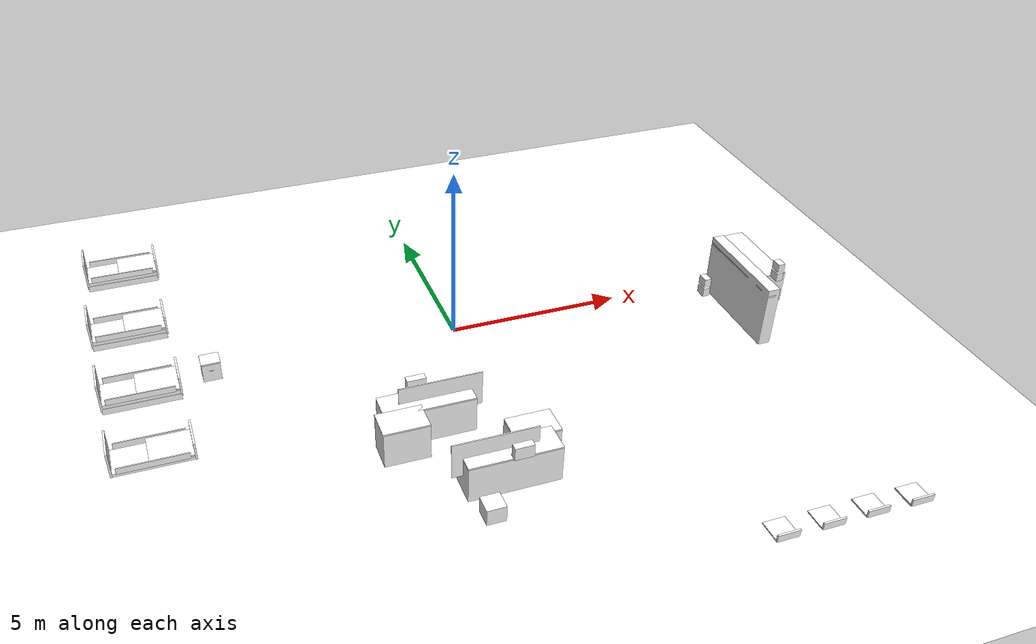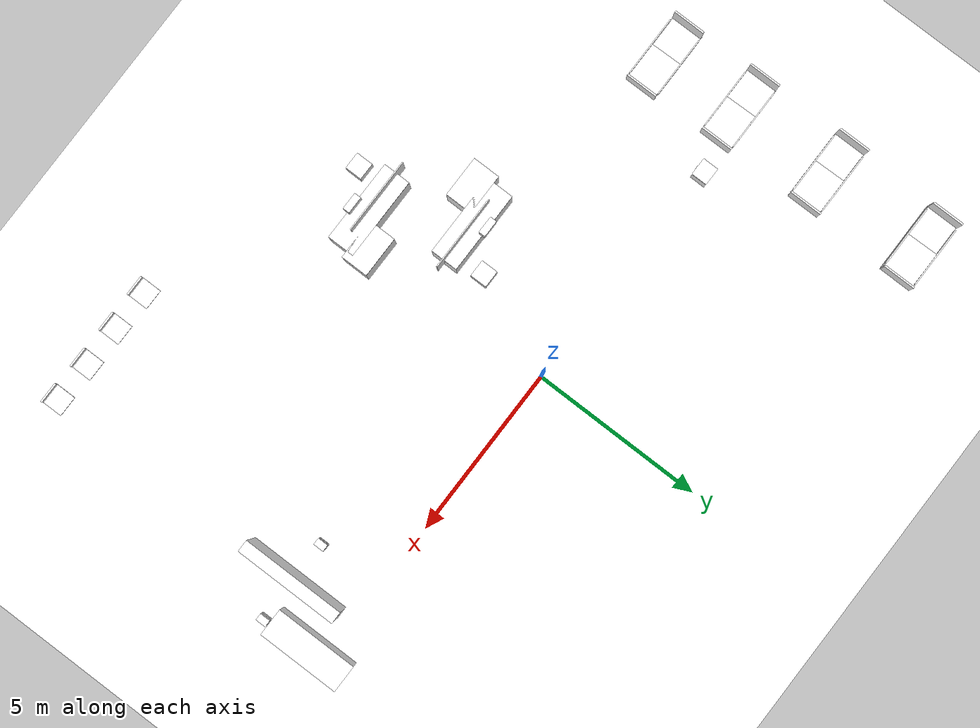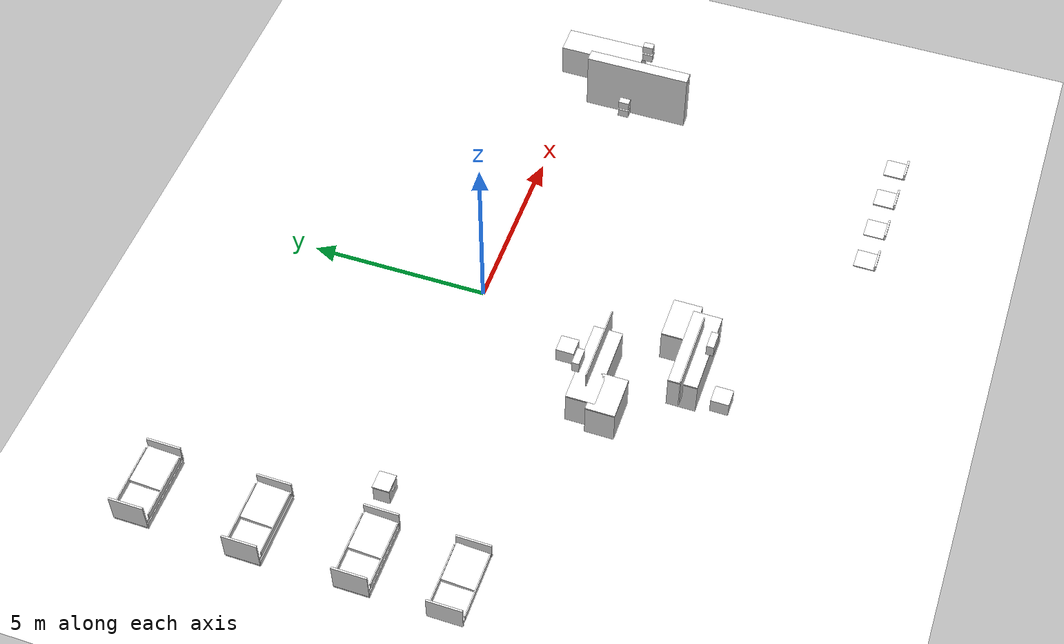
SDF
<sdf version="1.9">
 <world name="hospital">
  <model name="ground_plane">
   <static>true</static>
   <link name="link">
    <collision name="collision">
     <geometry><plane><normal>0 0 1</normal><size>100 100</size></plane></geometry>
     <surface><friction><ode><mu>100</mu><mu2>50</mu2></ode></friction></surface>
    </collision>
    <visual name="visual">
     <cast_shadows>false</cast_shadows>
     <geometry><plane><normal>0 0 1</normal><size>100 100</size></plane></geometry>
     <material><ambient>1 1 1 1</ambient><diffuse>1 1 1 1</diffuse></material>
    </visual>
    <inertial>
     <mass>1</mass>
     <inertia><ixx>1</ixx><ixy>0</ixy><ixz>0</ixz><iyy>1</iyy><iyz>0</iyz><izz>1</izz></inertia>
    </inertial>
   </link>
  </model>
  <model name="bed_1">
   <static>true</static>
   <link name="frame">
    <pose>-8.2 6.5 0.09 0 -0 0</pose>
    <visual name="frame_v">
     <geometry><box><size>2.05 0.95 0.18</size></box></geometry>
     <material><ambient>1 1 1 1</ambient><diffuse>1 1 1 1</diffuse><specular>0.15 0.15 0.18 1</specular></material>
    </visual>
    <collision name="frame_c"><geometry><box><size>2.05 0.95 0.18</size></box></geometry></collision>
    <inertial>
     <mass>1</mass>
     <inertia><ixx>1</ixx><ixy>0</ixy><ixz>0</ixz><iyy>1</iyy><iyz>0</iyz><izz>1</izz></inertia>
    </inertial>
   </link>
   <link name="mattress1">
    <pose>-8.2 6.5 0.24 0 -0 0</pose>
    <visual name="mattress1_v">
     <geometry><box><size>2 0.92 0.1</size></box></geometry>
     <material><ambient>1 1 1 1</ambient><diffuse>1 1 1 1</diffuse><specular>0.15 0.15 0.18 1</specular></material>
    </visual>
    <collision name="mattress1_c"><geometry><box><size>2 0.92 0.1</size></box></geometry></collision>
    <inertial>
     <mass>1</mass>
     <inertia><ixx>1</ixx><ixy>0</ixy><ixz>0</ixz><iyy>1</iyy><iyz>0</iyz><izz>1</izz></inertia>
    </inertial>
   </link>
   <link name="mattress2">
    <pose>-7.75 6.5 0.34 0.08 -0 0</pose>
    <visual name="mattress2_v">
     <geometry><box><size>1.1 0.92 0.1</size></box></geometry>
     <material><ambient>1 1 1 1</ambient><diffuse>1 1 1 1</diffuse><specular>0.15 0.15 0.18 1</specular></material>
    </visual>
    <collision name="mattress2_c"><geometry><box><size>1.1 0.92 0.1</size></box></geometry></collision>
    <inertial>
     <mass>1</mass>
     <inertia><ixx>1</ixx><ixy>0</ixy><ixz>0</ixz><iyy>1</iyy><iyz>0</iyz><izz>1</izz></inertia>
    </inertial>
   </link>
   <link name="head">
    <pose>-9.225 6.5 0.52 0 -0 0</pose>
    <visual name="head_v">
     <geometry><box><size>0.05 0.95 0.85</size></box></geometry>
     <material><ambient>1 1 1 1</ambient><diffuse>1 1 1 1</diffuse><specular>0.15 0.15 0.18 1</specular></material>
    </visual>
    <collision name="head_c"><geometry><box><size>0.05 0.95 0.85</size></box></geometry></collision>
    <inertial>
     <mass>1</mass>
     <inertia><ixx>1</ixx><ixy>0</ixy><ixz>0</ixz><iyy>1</iyy><iyz>0</iyz><izz>1</izz></inertia>
    </inertial>
   </link>
   <link name="foot">
    <pose>-7.175 6.5 0.41 0 -0 0</pose>
    <visual name="foot_v">
     <geometry><box><size>0.05 0.95 0.6</size></box></geometry>
     <material><ambient>1 1 1 1</ambient><diffuse>1 1 1 1</diffuse><specular>0.15 0.15 0.18 1</specular></material>
    </visual>
    <collision name="foot_c"><geometry><box><size>0.05 0.95 0.6</size></box></geometry></collision>
    <inertial>
     <mass>1</mass>
     <inertia><ixx>1</ixx><ixy>0</ixy><ixz>0</ixz><iyy>1</iyy><iyz>0</iyz><izz>1</izz></inertia>
    </inertial>
   </link>
   <link name="wheel_0">
    <pose>-9.1 6.15 0.06 1.5708 -0 0</pose>
    <visual name="wheel_0_v">
     <geometry>
      <cylinder><radius>0.059999999999999998</radius><length>0.050000000000000003</length></cylinder>
     </geometry>
     <material><ambient>1 1 1 1</ambient><diffuse>1 1 1 1</diffuse><specular>0.2 0.2 0.22 1</specular></material>
    </visual>
    <collision name="wheel_0_c">
     <geometry>
      <cylinder><radius>0.059999999999999998</radius><length>0.050000000000000003</length></cylinder>
     </geometry>
    </collision>
    <inertial>
     <mass>1</mass>
     <inertia><ixx>1</ixx><ixy>0</ixy><ixz>0</ixz><iyy>1</iyy><iyz>0</iyz><izz>1</izz></inertia>
    </inertial>
   </link>
   <link name="wheel_1">
    <pose>-9.1 6.85 0.06 1.5708 -0 0</pose>
    <visual name="wheel_1_v">
     <geometry>
      <cylinder><radius>0.059999999999999998</radius><length>0.050000000000000003</length></cylinder>
     </geometry>
     <material><ambient>1 1 1 1</ambient><diffuse>1 1 1 1</diffuse><specular>0.2 0.2 0.22 1</specular></material>
    </visual>
    <collision name="wheel_1_c">
     <geometry>
      <cylinder><radius>0.059999999999999998</radius><length>0.050000000000000003</length></cylinder>
     </geometry>
    </collision>
    <inertial>
     <mass>1</mass>
     <inertia><ixx>1</ixx><ixy>0</ixy><ixz>0</ixz><iyy>1</iyy><iyz>0</iyz><izz>1</izz></inertia>
    </inertial>
   </link>
   <link name="wheel_2">
    <pose>-7.3 6.15 0.06 1.5708 -0 0</pose>
    <visual name="wheel_2_v">
     <geometry>
      <cylinder><radius>0.059999999999999998</radius><length>0.050000000000000003</length></cylinder>
     </geometry>
     <material><ambient>1 1 1 1</ambient><diffuse>1 1 1 1</diffuse><specular>0.2 0.2 0.22 1</specular></material>
    </visual>
    <collision name="wheel_2_c">
     <geometry>
      <cylinder><radius>0.059999999999999998</radius><length>0.050000000000000003</length></cylinder>
     </geometry>
    </collision>
    <inertial>
     <mass>1</mass>
     <inertia><ixx>1</ixx><ixy>0</ixy><ixz>0</ixz><iyy>1</iyy><iyz>0</iyz><izz>1</izz></inertia>
    </inertial>
   </link>
   <link name="wheel_3">
    <pose>-7.3 6.85 0.06 1.5708 -0 0</pose>
    <visual name="wheel_3_v">
     <geometry>
      <cylinder><radius>0.059999999999999998</radius><length>0.050000000000000003</length></cylinder>
     </geometry>
     <material><ambient>1 1 1 1</ambient><diffuse>1 1 1 1</diffuse><specular>0.2 0.2 0.22 1</specular></material>
    </visual>
    <collision name="wheel_3_c">
     <geometry>
      <cylinder><radius>0.059999999999999998</radius><length>0.050000000000000003</length></cylinder>
     </geometry>
    </collision>
    <inertial>
     <mass>1</mass>
     <inertia><ixx>1</ixx><ixy>0</ixy><ixz>0</ixz><iyy>1</iyy><iyz>0</iyz><izz>1</izz></inertia>
    </inertial>
   </link>
   <link name="rail_left">
    <pose>-8.2 6.03 0.38 0 -0 0</pose>
    <visual name="rail_left_v">
     <geometry><box><size>1.8 0.03 0.18</size></box></geometry>
     <material><ambient>1 1 1 1</ambient><diffuse>1 1 1 1</diffuse><specular>0.15 0.15 0.18 1</specular></material>
    </visual>
    <collision name="rail_left_c"><geometry><box><size>1.8 0.03 0.18</size></box></geometry></collision>
    <inertial>
     <mass>1</mass>
     <inertia><ixx>1</ixx><ixy>0</ixy><ixz>0</ixz><iyy>1</iyy><iyz>0</iyz><izz>1</izz></inertia>
    </inertial>
   </link>
   <link name="rail_right">
    <pose>-8.2 6.97 0.38 0 -0 0</pose>
    <visual name="rail_right_v">
     <geometry><box><size>1.8 0.03 0.18</size></box></geometry>
     <material><ambient>1 1 1 1</ambient><diffuse>1 1 1 1</diffuse><specular>0.15 0.15 0.18 1</specular></material>
    </visual>
    <collision name="rail_right_c"><geometry><box><size>1.8 0.03 0.18</size></box></geometry></collision>
    <inertial>
     <mass>1</mass>
     <inertia><ixx>1</ixx><ixy>0</ixy><ixz>0</ixz><iyy>1</iyy><iyz>0</iyz><izz>1</izz></inertia>
    </inertial>
   </link>
   <pose>-0.565113 -0.646384 0 0 -0 0</pose>
  </model>
  <model name="bed_2">
   <static>true</static>
   <link name="frame">
    <pose>-8.2 3.3 0.09 0 -0 0</pose>
    <visual name="frame_v">
     <geometry><box><size>2.05 0.95 0.18</size></box></geometry>
     <material><ambient>1 1 1 1</ambient><diffuse>1 1 1 1</diffuse><specular>0.15 0.15 0.18 1</specular></material>
    </visual>
    <collision name="frame_c"><geometry><box><size>2.05 0.95 0.18</size></box></geometry></collision>
    <inertial>
     <mass>1</mass>
     <inertia><ixx>1</ixx><ixy>0</ixy><ixz>0</ixz><iyy>1</iyy><iyz>0</iyz><izz>1</izz></inertia>
    </inertial>
   </link>
   <link name="mattress1">
    <pose>-8.2 3.3 0.24 0 -0 0</pose>
    <visual name="mattress1_v">
     <geometry><box><size>2 0.92 0.1</size></box></geometry>
     <material><ambient>1 1 1 1</ambient><diffuse>1 1 1 1</diffuse><specular>0.15 0.15 0.18 1</specular></material>
    </visual>
    <collision name="mattress1_c"><geometry><box><size>2 0.92 0.1</size></box></geometry></collision>
    <inertial>
     <mass>1</mass>
     <inertia><ixx>1</ixx><ixy>0</ixy><ixz>0</ixz><iyy>1</iyy><iyz>0</iyz><izz>1</izz></inertia>
    </inertial>
   </link>
   <link name="mattress2">
    <pose>-7.75 3.3 0.34 0.08 -0 0</pose>
    <visual name="mattress2_v">
     <geometry><box><size>1.1 0.92 0.1</size></box></geometry>
     <material><ambient>1 1 1 1</ambient><diffuse>1 1 1 1</diffuse><specular>0.15 0.15 0.18 1</specular></material>
    </visual>
    <collision name="mattress2_c"><geometry><box><size>1.1 0.92 0.1</size></box></geometry></collision>
    <inertial>
     <mass>1</mass>
     <inertia><ixx>1</ixx><ixy>0</ixy><ixz>0</ixz><iyy>1</iyy><iyz>0</iyz><izz>1</izz></inertia>
    </inertial>
   </link>
   <link name="head">
    <pose>-9.225 3.3 0.52 0 -0 0</pose>
    <visual name="head_v">
     <geometry><box><size>0.05 0.95 0.85</size></box></geometry>
     <material><ambient>1 1 1 1</ambient><diffuse>1 1 1 1</diffuse><specular>0.15 0.15 0.18 1</specular></material>
    </visual>
    <collision name="head_c"><geometry><box><size>0.05 0.95 0.85</size></box></geometry></collision>
    <inertial>
     <mass>1</mass>
     <inertia><ixx>1</ixx><ixy>0</ixy><ixz>0</ixz><iyy>1</iyy><iyz>0</iyz><izz>1</izz></inertia>
    </inertial>
   </link>
   <link name="foot">
    <pose>-7.175 3.3 0.41 0 -0 0</pose>
    <visual name="foot_v">
     <geometry><box><size>0.05 0.95 0.6</size></box></geometry>
     <material><ambient>1 1 1 1</ambient><diffuse>1 1 1 1</diffuse><specular>0.15 0.15 0.18 1</specular></material>
    </visual>
    <collision name="foot_c"><geometry><box><size>0.05 0.95 0.6</size></box></geometry></collision>
    <inertial>
     <mass>1</mass>
     <inertia><ixx>1</ixx><ixy>0</ixy><ixz>0</ixz><iyy>1</iyy><iyz>0</iyz><izz>1</izz></inertia>
    </inertial>
   </link>
   <link name="wheel_0">
    <pose>-9.1 2.95 0.06 1.5708 -0 0</pose>
    <visual name="wheel_0_v">
     <geometry>
      <cylinder><radius>0.059999999999999998</radius><length>0.050000000000000003</length></cylinder>
     </geometry>
     <material><ambient>1 1 1 1</ambient><diffuse>1 1 1 1</diffuse><specular>0.2 0.2 0.22 1</specular></material>
    </visual>
    <collision name="wheel_0_c">
     <geometry>
      <cylinder><radius>0.059999999999999998</radius><length>0.050000000000000003</length></cylinder>
     </geometry>
    </collision>
    <inertial>
     <mass>1</mass>
     <inertia><ixx>1</ixx><ixy>0</ixy><ixz>0</ixz><iyy>1</iyy><iyz>0</iyz><izz>1</izz></inertia>
    </inertial>
   </link>
   <link name="wheel_1">
    <pose>-9.1 3.65 0.06 1.5708 -0 0</pose>
    <visual name="wheel_1_v">
     <geometry>
      <cylinder><radius>0.059999999999999998</radius><length>0.050000000000000003</length></cylinder>
     </geometry>
     <material><ambient>1 1 1 1</ambient><diffuse>1 1 1 1</diffuse><specular>0.2 0.2 0.22 1</specular></material>
    </visual>
    <collision name="wheel_1_c">
     <geometry>
      <cylinder><radius>0.059999999999999998</radius><length>0.050000000000000003</length></cylinder>
     </geometry>
    </collision>
    <inertial>
     <mass>1</mass>
     <inertia><ixx>1</ixx><ixy>0</ixy><ixz>0</ixz><iyy>1</iyy><iyz>0</iyz><izz>1</izz></inertia>
    </inertial>
   </link>
   <link name="wheel_2">
    <pose>-7.3 2.95 0.06 1.5708 -0 0</pose>
    <visual name="wheel_2_v">
     <geometry>
      <cylinder><radius>0.059999999999999998</radius><length>0.050000000000000003</length></cylinder>
     </geometry>
     <material><ambient>1 1 1 1</ambient><diffuse>1 1 1 1</diffuse><specular>0.2 0.2 0.22 1</specular></material>
    </visual>
    <collision name="wheel_2_c">
     <geometry>
      <cylinder><radius>0.059999999999999998</radius><length>0.050000000000000003</length></cylinder>
     </geometry>
    </collision>
    <inertial>
     <mass>1</mass>
     <inertia><ixx>1</ixx><ixy>0</ixy><ixz>0</ixz><iyy>1</iyy><iyz>0</iyz><izz>1</izz></inertia>
    </inertial>
   </link>
   <link name="wheel_3">
    <pose>-7.3 3.65 0.06 1.5708 -0 0</pose>
    <visual name="wheel_3_v">
     <geometry>
      <cylinder><radius>0.059999999999999998</radius><length>0.050000000000000003</length></cylinder>
     </geometry>
     <material><ambient>1 1 1 1</ambient><diffuse>1 1 1 1</diffuse><specular>0.2 0.2 0.22 1</specular></material>
    </visual>
    <collision name="wheel_3_c">
     <geometry>
      <cylinder><radius>0.059999999999999998</radius><length>0.050000000000000003</length></cylinder>
     </geometry>
    </collision>
    <inertial>
     <mass>1</mass>
     <inertia><ixx>1</ixx><ixy>0</ixy><ixz>0</ixz><iyy>1</iyy><iyz>0</iyz><izz>1</izz></inertia>
    </inertial>
   </link>
   <link name="rail_left">
    <pose>-8.2 2.83 0.38 0 -0 0</pose>
    <visual name="rail_left_v">
     <geometry><box><size>1.8 0.03 0.18</size></box></geometry>
     <material><ambient>1 1 1 1</ambient><diffuse>1 1 1 1</diffuse><specular>0.15 0.15 0.18 1</specular></material>
    </visual>
    <collision name="rail_left_c"><geometry><box><size>1.8 0.03 0.18</size></box></geometry></collision>
    <inertial>
     <mass>1</mass>
     <inertia><ixx>1</ixx><ixy>0</ixy><ixz>0</ixz><iyy>1</iyy><iyz>0</iyz><izz>1</izz></inertia>
    </inertial>
   </link>
   <link name="rail_right">
    <pose>-8.2 3.77 0.38 0 -0 0</pose>
    <visual name="rail_right_v">
     <geometry><box><size>1.8 0.03 0.18</size></box></geometry>
     <material><ambient>1 1 1 1</ambient><diffuse>1 1 1 1</diffuse><specular>0.15 0.15 0.18 1</specular></material>
    </visual>
    <collision name="rail_right_c"><geometry><box><size>1.8 0.03 0.18</size></box></geometry></collision>
    <inertial>
     <mass>1</mass>
     <inertia><ixx>1</ixx><ixy>0</ixy><ixz>0</ixz><iyy>1</iyy><iyz>0</iyz><izz>1</izz></inertia>
    </inertial>
   </link>
   <pose>-0.642745 -0.54918 0 0 -0 0</pose>
  </model>
  <model name="bed_3">
   <static>true</static>
   <link name="frame">
    <pose>-8.2 1 0.09 0 -0 0</pose>
    <visual name="frame_v">
     <geometry><box><size>2.05 0.95 0.18</size></box></geometry>
     <material><ambient>1 1 1 1</ambient><diffuse>1 1 1 1</diffuse><specular>0.15 0.15 0.18 1</specular></material>
    </visual>
    <collision name="frame_c"><geometry><box><size>2.05 0.95 0.18</size></box></geometry></collision>
    <inertial>
     <mass>1</mass>
     <inertia><ixx>1</ixx><ixy>0</ixy><ixz>0</ixz><iyy>1</iyy><iyz>0</iyz><izz>1</izz></inertia>
    </inertial>
   </link>
   <link name="mattress1">
    <pose>-8.2 1 0.24 0 -0 0</pose>
    <visual name="mattress1_v">
     <geometry><box><size>2 0.92 0.1</size></box></geometry>
     <material><ambient>1 1 1 1</ambient><diffuse>1 1 1 1</diffuse><specular>0.15 0.15 0.18 1</specular></material>
    </visual>
    <collision name="mattress1_c"><geometry><box><size>2 0.92 0.1</size></box></geometry></collision>
    <inertial>
     <mass>1</mass>
     <inertia><ixx>1</ixx><ixy>0</ixy><ixz>0</ixz><iyy>1</iyy><iyz>0</iyz><izz>1</izz></inertia>
    </inertial>
   </link>
   <link name="mattress2">
    <pose>-7.75 1 0.34 0.08 -0 0</pose>
    <visual name="mattress2_v">
     <geometry><box><size>1.1 0.92 0.1</size></box></geometry>
     <material><ambient>1 1 1 1</ambient><diffuse>1 1 1 1</diffuse><specular>0.15 0.15 0.18 1</specular></material>
    </visual>
    <collision name="mattress2_c"><geometry><box><size>1.1 0.92 0.1</size></box></geometry></collision>
    <inertial>
     <mass>1</mass>
     <inertia><ixx>1</ixx><ixy>0</ixy><ixz>0</ixz><iyy>1</iyy><iyz>0</iyz><izz>1</izz></inertia>
    </inertial>
   </link>
   <link name="head">
    <pose>-9.225 1 0.52 0 -0 0</pose>
    <visual name="head_v">
     <geometry><box><size>0.05 0.95 0.85</size></box></geometry>
     <material><ambient>1 1 1 1</ambient><diffuse>1 1 1 1</diffuse><specular>0.15 0.15 0.18 1</specular></material>
    </visual>
    <collision name="head_c"><geometry><box><size>0.05 0.95 0.85</size></box></geometry></collision>
    <inertial>
     <mass>1</mass>
     <inertia><ixx>1</ixx><ixy>0</ixy><ixz>0</ixz><iyy>1</iyy><iyz>0</iyz><izz>1</izz></inertia>
    </inertial>
   </link>
   <link name="foot">
    <pose>-7.175 1 0.41 0 -0 0</pose>
    <visual name="foot_v">
     <geometry><box><size>0.05 0.95 0.6</size></box></geometry>
     <material><ambient>1 1 1 1</ambient><diffuse>1 1 1 1</diffuse><specular>0.15 0.15 0.18 1</specular></material>
    </visual>
    <collision name="foot_c"><geometry><box><size>0.05 0.95 0.6</size></box></geometry></collision>
    <inertial>
     <mass>1</mass>
     <inertia><ixx>1</ixx><ixy>0</ixy><ixz>0</ixz><iyy>1</iyy><iyz>0</iyz><izz>1</izz></inertia>
    </inertial>
   </link>
   <link name="wheel_0">
    <pose>-9.1 0.65 0.06 1.5708 -0 0</pose>
    <visual name="wheel_0_v">
     <geometry>
      <cylinder><radius>0.059999999999999998</radius><length>0.050000000000000003</length></cylinder>
     </geometry>
     <material><ambient>1 1 1 1</ambient><diffuse>1 1 1 1</diffuse><specular>0.2 0.2 0.22 1</specular></material>
    </visual>
    <collision name="wheel_0_c">
     <geometry>
      <cylinder><radius>0.059999999999999998</radius><length>0.050000000000000003</length></cylinder>
     </geometry>
    </collision>
    <inertial>
     <mass>1</mass>
     <inertia><ixx>1</ixx><ixy>0</ixy><ixz>0</ixz><iyy>1</iyy><iyz>0</iyz><izz>1</izz></inertia>
    </inertial>
   </link>
   <link name="wheel_1">
    <pose>-9.1 1.35 0.06 1.5708 -0 0</pose>
    <visual name="wheel_1_v">
     <geometry>
      <cylinder><radius>0.059999999999999998</radius><length>0.050000000000000003</length></cylinder>
     </geometry>
     <material><ambient>1 1 1 1</ambient><diffuse>1 1 1 1</diffuse><specular>0.2 0.2 0.22 1</specular></material>
    </visual>
    <collision name="wheel_1_c">
     <geometry>
      <cylinder><radius>0.059999999999999998</radius><length>0.050000000000000003</length></cylinder>
     </geometry>
    </collision>
    <inertial>
     <mass>1</mass>
     <inertia><ixx>1</ixx><ixy>0</ixy><ixz>0</ixz><iyy>1</iyy><iyz>0</iyz><izz>1</izz></inertia>
    </inertial>
   </link>
   <link name="wheel_2">
    <pose>-7.3 0.65 0.06 1.5708 -0 0</pose>
    <visual name="wheel_2_v">
     <geometry>
      <cylinder><radius>0.059999999999999998</radius><length>0.050000000000000003</length></cylinder>
     </geometry>
     <material><ambient>1 1 1 1</ambient><diffuse>1 1 1 1</diffuse><specular>0.2 0.2 0.22 1</specular></material>
    </visual>
    <collision name="wheel_2_c">
     <geometry>
      <cylinder><radius>0.059999999999999998</radius><length>0.050000000000000003</length></cylinder>
     </geometry>
    </collision>
    <inertial>
     <mass>1</mass>
     <inertia><ixx>1</ixx><ixy>0</ixy><ixz>0</ixz><iyy>1</iyy><iyz>0</iyz><izz>1</izz></inertia>
    </inertial>
   </link>
   <link name="wheel_3">
    <pose>-7.3 1.35 0.06 1.5708 -0 0</pose>
    <visual name="wheel_3_v">
     <geometry>
      <cylinder><radius>0.059999999999999998</radius><length>0.050000000000000003</length></cylinder>
     </geometry>
     <material><ambient>1 1 1 1</ambient><diffuse>1 1 1 1</diffuse><specular>0.2 0.2 0.22 1</specular></material>
    </visual>
    <collision name="wheel_3_c">
     <geometry>
      <cylinder><radius>0.059999999999999998</radius><length>0.050000000000000003</length></cylinder>
     </geometry>
    </collision>
    <inertial>
     <mass>1</mass>
     <inertia><ixx>1</ixx><ixy>0</ixy><ixz>0</ixz><iyy>1</iyy><iyz>0</iyz><izz>1</izz></inertia>
    </inertial>
   </link>
   <link name="rail_left">
    <pose>-8.2 0.53 0.38 0 -0 0</pose>
    <visual name="rail_left_v">
     <geometry><box><size>1.8 0.03 0.18</size></box></geometry>
     <material><ambient>1 1 1 1</ambient><diffuse>1 1 1 1</diffuse><specular>0.15 0.15 0.18 1</specular></material>
    </visual>
    <collision name="rail_left_c"><geometry><box><size>1.8 0.03 0.18</size></box></geometry></collision>
    <inertial>
     <mass>1</mass>
     <inertia><ixx>1</ixx><ixy>0</ixy><ixz>0</ixz><iyy>1</iyy><iyz>0</iyz><izz>1</izz></inertia>
    </inertial>
   </link>
   <link name="rail_right">
    <pose>-8.2 1.47 0.38 0 -0 0</pose>
    <visual name="rail_right_v">
     <geometry><box><size>1.8 0.03 0.18</size></box></geometry>
     <material><ambient>1 1 1 1</ambient><diffuse>1 1 1 1</diffuse><specular>0.15 0.15 0.18 1</specular></material>
    </visual>
    <collision name="rail_right_c"><geometry><box><size>1.8 0.03 0.18</size></box></geometry></collision>
    <inertial>
     <mass>1</mass>
     <inertia><ixx>1</ixx><ixy>0</ixy><ixz>0</ixz><iyy>1</iyy><iyz>0</iyz><izz>1</izz></inertia>
    </inertial>
   </link>
   <pose>-0.590531 -1.13184 0 0 -0 0</pose>
  </model>
  <model name="bed_4">
   <static>true</static>
   <link name="frame">
    <pose>-8.2 -2 0.09 0 -0 0</pose>
    <visual name="frame_v">
     <geometry><box><size>2.05 0.95 0.18</size></box></geometry>
     <material><ambient>1 1 1 1</ambient><diffuse>1 1 1 1</diffuse><specular>0.15 0.15 0.18 1</specular></material>
    </visual>
    <collision name="frame_c"><geometry><box><size>2.05 0.95 0.18</size></box></geometry></collision>
    <inertial>
     <mass>1</mass>
     <inertia><ixx>1</ixx><ixy>0</ixy><ixz>0</ixz><iyy>1</iyy><iyz>0</iyz><izz>1</izz></inertia>
    </inertial>
   </link>
   <link name="mattress1">
    <pose>-8.2 -2 0.24 0 -0 0</pose>
    <visual name="mattress1_v">
     <geometry><box><size>2 0.92 0.1</size></box></geometry>
     <material><ambient>1 1 1 1</ambient><diffuse>1 1 1 1</diffuse><specular>0.15 0.15 0.18 1</specular></material>
    </visual>
    <collision name="mattress1_c"><geometry><box><size>2 0.92 0.1</size></box></geometry></collision>
    <inertial>
     <mass>1</mass>
     <inertia><ixx>1</ixx><ixy>0</ixy><ixz>0</ixz><iyy>1</iyy><iyz>0</iyz><izz>1</izz></inertia>
    </inertial>
   </link>
   <link name="mattress2">
    <pose>-7.75 -2 0.34 0.08 -0 0</pose>
    <visual name="mattress2_v">
     <geometry><box><size>1.1 0.92 0.1</size></box></geometry>
     <material><ambient>1 1 1 1</ambient><diffuse>1 1 1 1</diffuse><specular>0.15 0.15 0.18 1</specular></material>
    </visual>
    <collision name="mattress2_c"><geometry><box><size>1.1 0.92 0.1</size></box></geometry></collision>
    <inertial>
     <mass>1</mass>
     <inertia><ixx>1</ixx><ixy>0</ixy><ixz>0</ixz><iyy>1</iyy><iyz>0</iyz><izz>1</izz></inertia>
    </inertial>
   </link>
   <link name="head">
    <pose>-9.225 -2 0.52 0 -0 0</pose>
    <visual name="head_v">
     <geometry><box><size>0.05 0.95 0.85</size></box></geometry>
     <material><ambient>1 1 1 1</ambient><diffuse>1 1 1 1</diffuse><specular>0.15 0.15 0.18 1</specular></material>
    </visual>
    <collision name="head_c"><geometry><box><size>0.05 0.95 0.85</size></box></geometry></collision>
    <inertial>
     <mass>1</mass>
     <inertia><ixx>1</ixx><ixy>0</ixy><ixz>0</ixz><iyy>1</iyy><iyz>0</iyz><izz>1</izz></inertia>
    </inertial>
   </link>
   <link name="foot">
    <pose>-7.175 -2 0.41 0 -0 0</pose>
    <visual name="foot_v">
     <geometry><box><size>0.05 0.95 0.6</size></box></geometry>
     <material><ambient>1 1 1 1</ambient><diffuse>1 1 1 1</diffuse><specular>0.15 0.15 0.18 1</specular></material>
    </visual>
    <collision name="foot_c"><geometry><box><size>0.05 0.95 0.6</size></box></geometry></collision>
    <inertial>
     <mass>1</mass>
     <inertia><ixx>1</ixx><ixy>0</ixy><ixz>0</ixz><iyy>1</iyy><iyz>0</iyz><izz>1</izz></inertia>
    </inertial>
   </link>
   <link name="wheel_0">
    <pose>-9.1 -2.35 0.06 1.5708 -0 0</pose>
    <visual name="wheel_0_v">
     <geometry>
      <cylinder><radius>0.059999999999999998</radius><length>0.050000000000000003</length></cylinder>
     </geometry>
     <material><ambient>1 1 1 1</ambient><diffuse>1 1 1 1</diffuse><specular>0.2 0.2 0.22 1</specular></material>
    </visual>
    <collision name="wheel_0_c">
     <geometry>
      <cylinder><radius>0.059999999999999998</radius><length>0.050000000000000003</length></cylinder>
     </geometry>
    </collision>
    <inertial>
     <mass>1</mass>
     <inertia><ixx>1</ixx><ixy>0</ixy><ixz>0</ixz><iyy>1</iyy><iyz>0</iyz><izz>1</izz></inertia>
    </inertial>
   </link>
   <link name="wheel_1">
    <pose>-9.1 -1.65 0.06 1.5708 -0 0</pose>
    <visual name="wheel_1_v">
     <geometry>
      <cylinder><radius>0.059999999999999998</radius><length>0.050000000000000003</length></cylinder>
     </geometry>
     <material><ambient>1 1 1 1</ambient><diffuse>1 1 1 1</diffuse><specular>0.2 0.2 0.22 1</specular></material>
    </visual>
    <collision name="wheel_1_c">
     <geometry>
      <cylinder><radius>0.059999999999999998</radius><length>0.050000000000000003</length></cylinder>
     </geometry>
    </collision>
    <inertial>
     <mass>1</mass>
     <inertia><ixx>1</ixx><ixy>0</ixy><ixz>0</ixz><iyy>1</iyy><iyz>0</iyz><izz>1</izz></inertia>
    </inertial>
   </link>
   <link name="wheel_2">
    <pose>-7.3 -2.35 0.06 1.5708 -0 0</pose>
    <visual name="wheel_2_v">
     <geometry>
      <cylinder><radius>0.059999999999999998</radius><length>0.050000000000000003</length></cylinder>
     </geometry>
     <material><ambient>1 1 1 1</ambient><diffuse>1 1 1 1</diffuse><specular>0.2 0.2 0.22 1</specular></material>
    </visual>
    <collision name="wheel_2_c">
     <geometry>
      <cylinder><radius>0.059999999999999998</radius><length>0.050000000000000003</length></cylinder>
     </geometry>
    </collision>
    <inertial>
     <mass>1</mass>
     <inertia><ixx>1</ixx><ixy>0</ixy><ixz>0</ixz><iyy>1</iyy><iyz>0</iyz><izz>1</izz></inertia>
    </inertial>
   </link>
   <link name="wheel_3">
    <pose>-7.3 -1.65 0.06 1.5708 -0 0</pose>
    <visual name="wheel_3_v">
     <geometry>
      <cylinder><radius>0.059999999999999998</radius><length>0.050000000000000003</length></cylinder>
     </geometry>
     <material><ambient>1 1 1 1</ambient><diffuse>1 1 1 1</diffuse><specular>0.2 0.2 0.22 1</specular></material>
    </visual>
    <collision name="wheel_3_c">
     <geometry>
      <cylinder><radius>0.059999999999999998</radius><length>0.050000000000000003</length></cylinder>
     </geometry>
    </collision>
    <inertial>
     <mass>1</mass>
     <inertia><ixx>1</ixx><ixy>0</ixy><ixz>0</ixz><iyy>1</iyy><iyz>0</iyz><izz>1</izz></inertia>
    </inertial>
   </link>
   <link name="rail_left">
    <pose>-8.2 -2.47 0.38 0 -0 0</pose>
    <visual name="rail_left_v">
     <geometry><box><size>1.8 0.03 0.18</size></box></geometry>
     <material><ambient>1 1 1 1</ambient><diffuse>1 1 1 1</diffuse><specular>0.15 0.15 0.18 1</specular></material>
    </visual>
    <collision name="rail_left_c"><geometry><box><size>1.8 0.03 0.18</size></box></geometry></collision>
    <inertial>
     <mass>1</mass>
     <inertia><ixx>1</ixx><ixy>0</ixy><ixz>0</ixz><iyy>1</iyy><iyz>0</iyz><izz>1</izz></inertia>
    </inertial>
   </link>
   <link name="rail_right">
    <pose>-8.2 -1.53 0.38 0 -0 0</pose>
    <visual name="rail_right_v">
     <geometry><box><size>1.8 0.03 0.18</size></box></geometry>
     <material><ambient>1 1 1 1</ambient><diffuse>1 1 1 1</diffuse><specular>0.15 0.15 0.18 1</specular></material>
    </visual>
    <collision name="rail_right_c"><geometry><box><size>1.8 0.03 0.18</size></box></geometry></collision>
    <inertial>
     <mass>1</mass>
     <inertia><ixx>1</ixx><ixy>0</ixy><ixz>0</ixz><iyy>1</iyy><iyz>0</iyz><izz>1</izz></inertia>
    </inertial>
   </link>
   <pose>-0.559763 -0.564794 -0.228503 0 -0 0</pose>
  </model>
  <model name="nightstand_3">
   <static>true</static>
   <link name="body">
    <pose>-7 1 0.275 0 -0 0</pose>
    <visual name="body_v">
     <geometry><box><size>0.5 0.45 0.55</size></box></geometry>
     <material><ambient>1 1 1 1</ambient><diffuse>1 1 1 1</diffuse><specular>0.15 0.15 0.18 1</specular></material>
    </visual>
    <collision name="body_c"><geometry><box><size>0.5 0.45 0.55</size></box></geometry></collision>
    <inertial>
     <mass>1</mass>
     <inertia><ixx>1</ixx><ixy>0</ixy><ixz>0</ixz><iyy>1</iyy><iyz>0</iyz><izz>1</izz></inertia>
    </inertial>
   </link>
   <link name="top">
    <pose>-7 1 0.55 0 -0 0</pose>
    <visual name="top_v">
     <geometry><box><size>0.52 0.47 0.04</size></box></geometry>
     <material><ambient>1 1 1 1</ambient><diffuse>1 1 1 1</diffuse><specular>0.15 0.15 0.18 1</specular></material>
    </visual>
    <collision name="top_c"><geometry><box><size>0.52 0.47 0.04</size></box></geometry></collision>
    <inertial>
     <mass>1</mass>
     <inertia><ixx>1</ixx><ixy>0</ixy><ixz>0</ixz><iyy>1</iyy><iyz>0</iyz><izz>1</izz></inertia>
    </inertial>
   </link>
   <link name="drawer">
    <pose>-7 0.8 0.34 0 -0 0</pose>
    <visual name="drawer_v">
     <geometry><box><size>0.46 0.04 0.14</size></box></geometry>
     <material><ambient>1 1 1 1</ambient><diffuse>1 1 1 1</diffuse><specular>0.15 0.15 0.18 1</specular></material>
    </visual>
    <collision name="drawer_c"><geometry><box><size>0.46 0.04 0.14</size></box></geometry></collision>
    <inertial>
     <mass>1</mass>
     <inertia><ixx>1</ixx><ixy>0</ixy><ixz>0</ixz><iyy>1</iyy><iyz>0</iyz><izz>1</izz></inertia>
    </inertial>
   </link>
   <link name="handle">
    <pose>-7 0.765 0.34 0 -0 0</pose>
    <visual name="handle_v">
     <geometry><box><size>0.12 0.03 0.02</size></box></geometry>
     <material><ambient>1 1 1 1</ambient><diffuse>1 1 1 1</diffuse><specular>0.15 0.15 0.18 1</specular></material>
    </visual>
    <collision name="handle_c"><geometry><box><size>0.12 0.03 0.02</size></box></geometry></collision>
    <inertial>
     <mass>1</mass>
     <inertia><ixx>1</ixx><ixy>0</ixy><ixz>0</ixz><iyy>1</iyy><iyz>0</iyz><izz>1</izz></inertia>
    </inertial>
   </link>
   <pose>0.108576 -0.856188 0 0 -0 0</pose>
  </model>
  <model name="dock_1">
   <static>true</static>
   <link name="pad">
    <pose>8.2 -7.4 0.025 0 -0 3.14159</pose>
    <visual name="pad_v">
     <geometry><box><size>0.6 0.6 0.05</size></box></geometry>
     <material><ambient>1 1 1 1</ambient><diffuse>1 1 1 1</diffuse><specular>0.15 0.15 0.18 1</specular></material>
    </visual>
    <collision name="pad_c"><geometry><box><size>0.6 0.6 0.05</size></box></geometry></collision>
    <inertial>
     <mass>1</mass>
     <inertia><ixx>1</ixx><ixy>0</ixy><ixz>0</ixz><iyy>1</iyy><iyz>0</iyz><izz>1</izz></inertia>
    </inertial>
   </link>
   <link name="back">
    <pose>8.2 -7.7 0.125 0 -0 3.14159</pose>
    <visual name="back_v">
     <geometry><box><size>0.6 0.05 0.2</size></box></geometry>
     <material><ambient>1 1 1 1</ambient><diffuse>1 1 1 1</diffuse><specular>0.15 0.15 0.18 1</specular></material>
    </visual>
    <collision name="back_c"><geometry><box><size>0.6 0.05 0.2</size></box></geometry></collision>
    <inertial>
     <mass>1</mass>
     <inertia><ixx>1</ixx><ixy>0</ixy><ixz>0</ixz><iyy>1</iyy><iyz>0</iyz><izz>1</izz></inertia>
    </inertial>
   </link>
   <pose>0 -2.3483 -0.03017 0 -0 0</pose>
  </model>
  <model name="dock_2">
   <static>true</static>
   <link name="pad">
    <pose>7 -7.4 0.025 0 -0 3.14159</pose>
    <visual name="pad_v">
     <geometry><box><size>0.6 0.6 0.05</size></box></geometry>
     <material><ambient>1 1 1 1</ambient><diffuse>1 1 1 1</diffuse><specular>0.15 0.15 0.18 1</specular></material>
    </visual>
    <collision name="pad_c"><geometry><box><size>0.6 0.6 0.05</size></box></geometry></collision>
    <inertial>
     <mass>1</mass>
     <inertia><ixx>1</ixx><ixy>0</ixy><ixz>0</ixz><iyy>1</iyy><iyz>0</iyz><izz>1</izz></inertia>
    </inertial>
   </link>
   <link name="back">
    <pose>7 -7.7 0.125 0 -0 3.14159</pose>
    <visual name="back_v">
     <geometry><box><size>0.6 0.05 0.2</size></box></geometry>
     <material><ambient>1 1 1 1</ambient><diffuse>1 1 1 1</diffuse><specular>0.15 0.15 0.18 1</specular></material>
    </visual>
    <collision name="back_c"><geometry><box><size>0.6 0.05 0.2</size></box></geometry></collision>
    <inertial>
     <mass>1</mass>
     <inertia><ixx>1</ixx><ixy>0</ixy><ixz>0</ixz><iyy>1</iyy><iyz>0</iyz><izz>1</izz></inertia>
    </inertial>
   </link>
   <pose>0 -2.31741 -0.036182 0 -0 0</pose>
  </model>
  <model name="dock_3">
   <static>true</static>
   <link name="pad">
    <pose>5.8 -7.4 0.025 0 -0 3.14159</pose>
    <visual name="pad_v">
     <geometry><box><size>0.6 0.6 0.05</size></box></geometry>
     <material><ambient>1 1 1 1</ambient><diffuse>1 1 1 1</diffuse><specular>0.15 0.15 0.18 1</specular></material>
    </visual>
    <collision name="pad_c"><geometry><box><size>0.6 0.6 0.05</size></box></geometry></collision>
    <inertial>
     <mass>1</mass>
     <inertia><ixx>1</ixx><ixy>0</ixy><ixz>0</ixz><iyy>1</iyy><iyz>0</iyz><izz>1</izz></inertia>
    </inertial>
   </link>
   <link name="back">
    <pose>5.8 -7.7 0.125 0 -0 3.14159</pose>
    <visual name="back_v">
     <geometry><box><size>0.6 0.05 0.2</size></box></geometry>
     <material><ambient>1 1 1 1</ambient><diffuse>1 1 1 1</diffuse><specular>0.15 0.15 0.18 1</specular></material>
    </visual>
    <collision name="back_c"><geometry><box><size>0.6 0.05 0.2</size></box></geometry></collision>
    <inertial>
     <mass>1</mass>
     <inertia><ixx>1</ixx><ixy>0</ixy><ixz>0</ixz><iyy>1</iyy><iyz>0</iyz><izz>1</izz></inertia>
    </inertial>
   </link>
   <pose>0 -2.31039 -0.043047 0 -0 0</pose>
  </model>
  <model name="dock_4">
   <static>true</static>
   <link name="pad">
    <pose>4.6 -7.4 0.025 0 -0 3.14159</pose>
    <visual name="pad_v">
     <geometry><box><size>0.6 0.6 0.05</size></box></geometry>
     <material><ambient>1 1 1 1</ambient><diffuse>1 1 1 1</diffuse><specular>0.15 0.15 0.18 1</specular></material>
    </visual>
    <collision name="pad_c"><geometry><box><size>0.6 0.6 0.05</size></box></geometry></collision>
    <inertial>
     <mass>1</mass>
     <inertia><ixx>1</ixx><ixy>0</ixy><ixz>0</ixz><iyy>1</iyy><iyz>0</iyz><izz>1</izz></inertia>
    </inertial>
   </link>
   <link name="back">
    <pose>4.6 -7.7 0.125 0 -0 3.14159</pose>
    <visual name="back_v">
     <geometry><box><size>0.6 0.05 0.2</size></box></geometry>
     <material><ambient>1 1 1 1</ambient><diffuse>1 1 1 1</diffuse><specular>0.15 0.15 0.18 1</specular></material>
    </visual>
    <collision name="back_c"><geometry><box><size>0.6 0.05 0.2</size></box></geometry></collision>
    <inertial>
     <mass>1</mass>
     <inertia><ixx>1</ixx><ixy>0</ixy><ixz>0</ixz><iyy>1</iyy><iyz>0</iyz><izz>1</izz></inertia>
    </inertial>
   </link>
   <pose>0 -2.29586 -0.043686 0 -0 0</pose>
  </model>
  <model name="pharmacy">
   <static>true</static>
   <link name="counter">
    <pose>8.4 1.4 0.5 0 -0 1.5708</pose>
    <visual name="counter_v">
     <geometry><box><size>2.4 0.8 1</size></box></geometry>
     <material><ambient>1 1 1 1</ambient><diffuse>1 1 1 1</diffuse><specular>0.15 0.15 0.18 1</specular></material>
    </visual>
    <collision name="counter_c"><geometry><box><size>2.4 0.8 1</size></box></geometry></collision>
    <inertial>
     <mass>1</mass>
     <inertia><ixx>1</ixx><ixy>0</ixy><ixz>0</ixz><iyy>1</iyy><iyz>0</iyz><izz>1</izz></inertia>
    </inertial>
   </link>
   <link name="wall_shelf1">
    <pose>7.2 0 0.9 0 -0 1.5708</pose>
    <visual name="wall_shelf1_v">
     <geometry><box><size>3 0.35 1.8</size></box></geometry>
     <material><ambient>1 1 1 1</ambient><diffuse>1 1 1 1</diffuse><specular>0.15 0.15 0.18 1</specular></material>
    </visual>
    <collision name="wall_shelf1_c"><geometry><box><size>3 0.35 1.8</size></box></geometry></collision>
    <inertial>
     <mass>1</mass>
     <inertia><ixx>1</ixx><ixy>0</ixy><ixz>0</ixz><iyy>1</iyy><iyz>0</iyz><izz>1</izz></inertia>
    </inertial>
   </link>
   <link name="wall_shelf2">
    <pose>7.2 0 1.6 0 -0 1.5708</pose>
    <visual name="wall_shelf2_v">
     <geometry><box><size>3 0.35 0.05</size></box></geometry>
     <material><ambient>1 1 1 1</ambient><diffuse>1 1 1 1</diffuse><specular>0.15 0.15 0.18 1</specular></material>
    </visual>
    <collision name="wall_shelf2_c"><geometry><box><size>3 0.35 0.05</size></box></geometry></collision>
    <inertial>
     <mass>1</mass>
     <inertia><ixx>1</ixx><ixy>0</ixy><ixz>0</ixz><iyy>1</iyy><iyz>0</iyz><izz>1</izz></inertia>
    </inertial>
   </link>
   <link name="box_0">
    <pose>6 0.05 1.1 0 -0 1.5708</pose>
    <visual name="box_0_v">
     <geometry><box><size>0.3 0.2 0.25</size></box></geometry>
     <material><ambient>1 1 1 1</ambient><diffuse>1 1 1 1</diffuse><specular>0.15 0.15 0.18 1</specular></material>
    </visual>
    <collision name="box_0_c"><geometry><box><size>0.3 0.2 0.25</size></box></geometry></collision>
    <inertial>
     <mass>1</mass>
     <inertia><ixx>1</ixx><ixy>0</ixy><ixz>0</ixz><iyy>1</iyy><iyz>0</iyz><izz>1</izz></inertia>
    </inertial>
   </link>
   <link name="box_1">
    <pose>7.2 0.05 1.1 0 -0 1.5708</pose>
    <visual name="box_1_v">
     <geometry><box><size>0.3 0.2 0.25</size></box></geometry>
     <material><ambient>1 1 1 1</ambient><diffuse>1 1 1 1</diffuse><specular>0.15 0.15 0.18 1</specular></material>
    </visual>
    <collision name="box_1_c"><geometry><box><size>0.3 0.2 0.25</size></box></geometry></collision>
    <inertial>
     <mass>1</mass>
     <inertia><ixx>1</ixx><ixy>0</ixy><ixz>0</ixz><iyy>1</iyy><iyz>0</iyz><izz>1</izz></inertia>
    </inertial>
   </link>
   <link name="box_2">
    <pose>8.4 0.05 1.1 0 -0 1.5708</pose>
    <visual name="box_2_v">
     <geometry><box><size>0.3 0.2 0.25</size></box></geometry>
     <material><ambient>1 1 1 1</ambient><diffuse>1 1 1 1</diffuse><specular>0.15 0.15 0.18 1</specular></material>
    </visual>
    <collision name="box_2_c"><geometry><box><size>0.3 0.2 0.25</size></box></geometry></collision>
    <inertial>
     <mass>1</mass>
     <inertia><ixx>1</ixx><ixy>0</ixy><ixz>0</ixz><iyy>1</iyy><iyz>0</iyz><izz>1</izz></inertia>
    </inertial>
   </link>
   <link name="box_3">
    <pose>6 0.05 1.4 0 -0 1.5708</pose>
    <visual name="box_3_v">
     <geometry><box><size>0.3 0.2 0.25</size></box></geometry>
     <material><ambient>1 1 1 1</ambient><diffuse>1 1 1 1</diffuse><specular>0.15 0.15 0.18 1</specular></material>
    </visual>
    <collision name="box_3_c"><geometry><box><size>0.3 0.2 0.25</size></box></geometry></collision>
    <inertial>
     <mass>1</mass>
     <inertia><ixx>1</ixx><ixy>0</ixy><ixz>0</ixz><iyy>1</iyy><iyz>0</iyz><izz>1</izz></inertia>
    </inertial>
   </link>
   <link name="box_4">
    <pose>7.2 0.05 1.4 0 -0 1.5708</pose>
    <visual name="box_4_v">
     <geometry><box><size>0.3 0.2 0.25</size></box></geometry>
     <material><ambient>1 1 1 1</ambient><diffuse>1 1 1 1</diffuse><specular>0.15 0.15 0.18 1</specular></material>
    </visual>
    <collision name="box_4_c"><geometry><box><size>0.3 0.2 0.25</size></box></geometry></collision>
    <inertial>
     <mass>1</mass>
     <inertia><ixx>1</ixx><ixy>0</ixy><ixz>0</ixz><iyy>1</iyy><iyz>0</iyz><izz>1</izz></inertia>
    </inertial>
   </link>
   <link name="box_5">
    <pose>8.4 0.05 1.4 0 -0 1.5708</pose>
    <visual name="box_5_v">
     <geometry><box><size>0.3 0.2 0.25</size></box></geometry>
     <material><ambient>1 1 1 1</ambient><diffuse>1 1 1 1</diffuse><specular>0.15 0.15 0.18 1</specular></material>
    </visual>
    <collision name="box_5_c"><geometry><box><size>0.3 0.2 0.25</size></box></geometry></collision>
    <inertial>
     <mass>1</mass>
     <inertia><ixx>1</ixx><ixy>0</ixy><ixz>0</ixz><iyy>1</iyy><iyz>0</iyz><izz>1</izz></inertia>
    </inertial>
   </link>
   <pose>0.87764 -1.90861 0 0 -0 0</pose>
  </model>
  <model name="reception_desk_1_2">
   <static>true</static>
   <link name="counter_main">
    <pose>1 -0.7 0.5 0 0 -1.57</pose>
    <visual name="counter_main_v">
     <geometry><box><size>2.4 0.8 1</size></box></geometry>
     <material><ambient>1 1 1 1</ambient><diffuse>1 1 1 1</diffuse><specular>0.15 0.15 0.18 1</specular></material>
    </visual>
    <collision name="counter_main_c"><geometry><box><size>2.4 0.8 1</size></box></geometry></collision>
    <inertial>
     <mass>1</mass>
     <inertia><ixx>1</ixx><ixy>0</ixy><ixz>0</ixz><iyy>1</iyy><iyz>0</iyz><izz>1</izz></inertia>
    </inertial>
   </link>
   <link name="counter_return">
    <pose>1.6 -1.5 0.5 0 0 -1.57</pose>
    <visual name="counter_return_v">
     <geometry><box><size>1.2 0.8 1</size></box></geometry>
     <material><ambient>1 1 1 1</ambient><diffuse>1 1 1 1</diffuse><specular>0.15 0.15 0.18 1</specular></material>
    </visual>
    <collision name="counter_return_c"><geometry><box><size>1.2 0.8 1</size></box></geometry></collision>
    <inertial>
     <mass>1</mass>
     <inertia><ixx>1</ixx><ixy>0</ixy><ixz>0</ixz><iyy>1</iyy><iyz>0</iyz><izz>1</izz></inertia>
    </inertial>
   </link>
   <link name="worktop">
    <pose>1 -0.7 1.02 0 0 -1.57</pose>
    <visual name="worktop_v">
     <geometry><box><size>2.4 0.8 0.04</size></box></geometry>
     <material><ambient>1 1 1 1</ambient><diffuse>1 1 1 1</diffuse><specular>0.15 0.15 0.18 1</specular></material>
    </visual>
    <collision name="worktop_c"><geometry><box><size>2.4 0.8 0.04</size></box></geometry></collision>
    <inertial>
     <mass>1</mass>
     <inertia><ixx>1</ixx><ixy>0</ixy><ixz>0</ixz><iyy>1</iyy><iyz>0</iyz><izz>1</izz></inertia>
    </inertial>
   </link>
   <link name="worktop2">
    <pose>1.6 -1.5 1.02 0 0 -1.57</pose>
    <visual name="worktop2_v">
     <geometry><box><size>1.2 0.8 0.04</size></box></geometry>
     <material><ambient>1 1 1 1</ambient><diffuse>1 1 1 1</diffuse><specular>0.15 0.15 0.18 1</specular></material>
    </visual>
    <collision name="worktop2_c"><geometry><box><size>1.2 0.8 0.04</size></box></geometry></collision>
    <inertial>
     <mass>1</mass>
     <inertia><ixx>1</ixx><ixy>0</ixy><ixz>0</ixz><iyy>1</iyy><iyz>0</iyz><izz>1</izz></inertia>
    </inertial>
   </link>
   <link name="monitor">
    <pose>0.6 -0.85 1.25 0 0 -1.57</pose>
    <visual name="monitor_v">
     <geometry><box><size>0.5 0.2 0.35</size></box></geometry>
     <material><ambient>1 1 1 1</ambient><diffuse>1 1 1 1</diffuse><specular>0.15 0.15 0.18 1</specular></material>
    </visual>
    <collision name="monitor_c"><geometry><box><size>0.5 0.2 0.35</size></box></geometry></collision>
    <inertial>
     <mass>1</mass>
     <inertia><ixx>1</ixx><ixy>0</ixy><ixz>0</ixz><iyy>1</iyy><iyz>0</iyz><izz>1</izz></inertia>
    </inertial>
   </link>
   <link name="chair">
    <pose>0 0.1 0.225 0 0 -1.57</pose>
    <visual name="chair_v">
     <geometry><box><size>0.5 0.5 0.45</size></box></geometry>
     <material><ambient>1 1 1 1</ambient><diffuse>1 1 1 1</diffuse><specular>0.15 0.15 0.18 1</specular></material>
    </visual>
    <collision name="chair_c"><geometry><box><size>0.5 0.5 0.45</size></box></geometry></collision>
    <inertial>
     <mass>1</mass>
     <inertia><ixx>1</ixx><ixy>0</ixy><ixz>0</ixz><iyy>1</iyy><iyz>0</iyz><izz>1</izz></inertia>
    </inertial>
   </link>
   <link name="glass">
    <pose>1 -0.32 1 0 0 -1.57</pose>
    <visual name="glass_v">
     <geometry><box><size>2.2 0.03 1</size></box></geometry>
     <material><ambient>1 1 1 1</ambient><diffuse>1 1 1 1</diffuse><specular>0.15 0.15 0.18 1</specular></material>
    </visual>
    <collision name="glass_c"><geometry><box><size>2.2 0.03 1</size></box></geometry></collision>
    <inertial>
     <mass>1</mass>
     <inertia><ixx>1</ixx><ixy>0</ixy><ixz>0</ixz><iyy>1</iyy><iyz>0</iyz><izz>1</izz></inertia>
    </inertial>
   </link>
   <pose>-1.39618 -7.19021 0 0 -0 1.56786</pose>
  </model>
  <model name="reception_desk_1_3">
   <static>true</static>
   <link name="counter_main">
    <pose>1 -0.7 0.5 0 0 -1.57</pose>
    <visual name="counter_main_v">
     <geometry><box><size>2.4 0.8 1</size></box></geometry>
     <material><ambient>1 1 1 1</ambient><diffuse>1 1 1 1</diffuse><specular>0.15 0.15 0.18 1</specular></material>
    </visual>
    <collision name="counter_main_c"><geometry><box><size>2.4 0.8 1</size></box></geometry></collision>
    <inertial>
     <mass>1</mass>
     <inertia><ixx>1</ixx><ixy>0</ixy><ixz>0</ixz><iyy>1</iyy><iyz>0</iyz><izz>1</izz></inertia>
    </inertial>
   </link>
   <link name="counter_return">
    <pose>1.6 -1.5 0.5 0 0 -1.57</pose>
    <visual name="counter_return_v">
     <geometry><box><size>1.2 0.8 1</size></box></geometry>
     <material><ambient>1 1 1 1</ambient><diffuse>1 1 1 1</diffuse><specular>0.15 0.15 0.18 1</specular></material>
    </visual>
    <collision name="counter_return_c"><geometry><box><size>1.2 0.8 1</size></box></geometry></collision>
    <inertial>
     <mass>1</mass>
     <inertia><ixx>1</ixx><ixy>0</ixy><ixz>0</ixz><iyy>1</iyy><iyz>0</iyz><izz>1</izz></inertia>
    </inertial>
   </link>
   <link name="worktop">
    <pose>1 -0.7 1.02 0 0 -1.57</pose>
    <visual name="worktop_v">
     <geometry><box><size>2.4 0.8 0.04</size></box></geometry>
     <material><ambient>1 1 1 1</ambient><diffuse>1 1 1 1</diffuse><specular>0.15 0.15 0.18 1</specular></material>
    </visual>
    <collision name="worktop_c"><geometry><box><size>2.4 0.8 0.04</size></box></geometry></collision>
    <inertial>
     <mass>1</mass>
     <inertia><ixx>1</ixx><ixy>0</ixy><ixz>0</ixz><iyy>1</iyy><iyz>0</iyz><izz>1</izz></inertia>
    </inertial>
   </link>
   <link name="worktop2">
    <pose>1.6 -1.5 1.02 0 0 -1.57</pose>
    <visual name="worktop2_v">
     <geometry><box><size>1.2 0.8 0.04</size></box></geometry>
     <material><ambient>1 1 1 1</ambient><diffuse>1 1 1 1</diffuse><specular>0.15 0.15 0.18 1</specular></material>
    </visual>
    <collision name="worktop2_c"><geometry><box><size>1.2 0.8 0.04</size></box></geometry></collision>
    <inertial>
     <mass>1</mass>
     <inertia><ixx>1</ixx><ixy>0</ixy><ixz>0</ixz><iyy>1</iyy><iyz>0</iyz><izz>1</izz></inertia>
    </inertial>
   </link>
   <link name="monitor">
    <pose>0.6 -0.85 1.25 0 0 -1.57</pose>
    <visual name="monitor_v">
     <geometry><box><size>0.5 0.2 0.35</size></box></geometry>
     <material><ambient>1 1 1 1</ambient><diffuse>1 1 1 1</diffuse><specular>0.15 0.15 0.18 1</specular></material>
    </visual>
    <collision name="monitor_c"><geometry><box><size>0.5 0.2 0.35</size></box></geometry></collision>
    <inertial>
     <mass>1</mass>
     <inertia><ixx>1</ixx><ixy>0</ixy><ixz>0</ixz><iyy>1</iyy><iyz>0</iyz><izz>1</izz></inertia>
    </inertial>
   </link>
   <link name="chair">
    <pose>0 0.1 0.225 0 0 -1.57</pose>
    <visual name="chair_v">
     <geometry><box><size>0.5 0.5 0.45</size></box></geometry>
     <material><ambient>1 1 1 1</ambient><diffuse>1 1 1 1</diffuse><specular>0.15 0.15 0.18 1</specular></material>
    </visual>
    <collision name="chair_c"><geometry><box><size>0.5 0.5 0.45</size></box></geometry></collision>
    <inertial>
     <mass>1</mass>
     <inertia><ixx>1</ixx><ixy>0</ixy><ixz>0</ixz><iyy>1</iyy><iyz>0</iyz><izz>1</izz></inertia>
    </inertial>
   </link>
   <link name="glass">
    <pose>1 -0.32 1 0 0 -1.57</pose>
    <visual name="glass_v">
     <geometry><box><size>2.2 0.03 1</size></box></geometry>
     <material><ambient>1 1 1 1</ambient><diffuse>1 1 1 1</diffuse><specular>0.15 0.15 0.18 1</specular></material>
    </visual>
    <collision name="glass_c"><geometry><box><size>2.2 0.03 1</size></box></geometry></collision>
    <inertial>
     <mass>1</mass>
     <inertia><ixx>1</ixx><ixy>0</ixy><ixz>0</ixz><iyy>1</iyy><iyz>0</iyz><izz>1</izz></inertia>
    </inertial>
   </link>
   <pose>-1.33177 -2.83933 0 0 0 -1.57345</pose>
  </model>
 </world>
</sdf>
